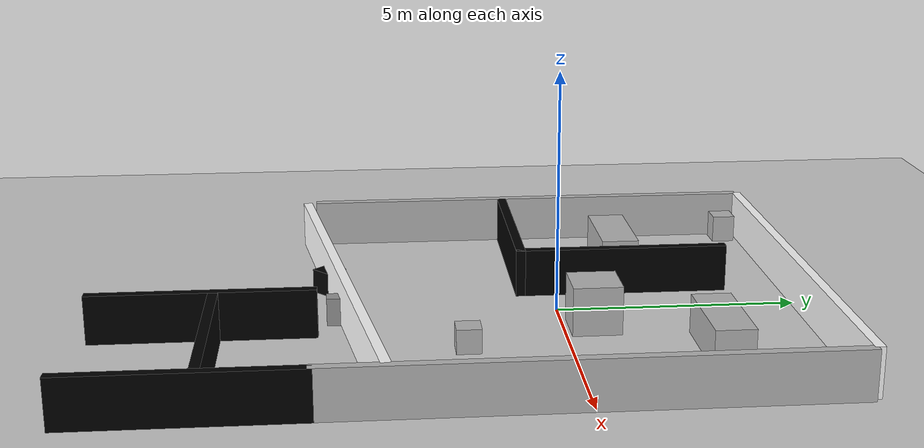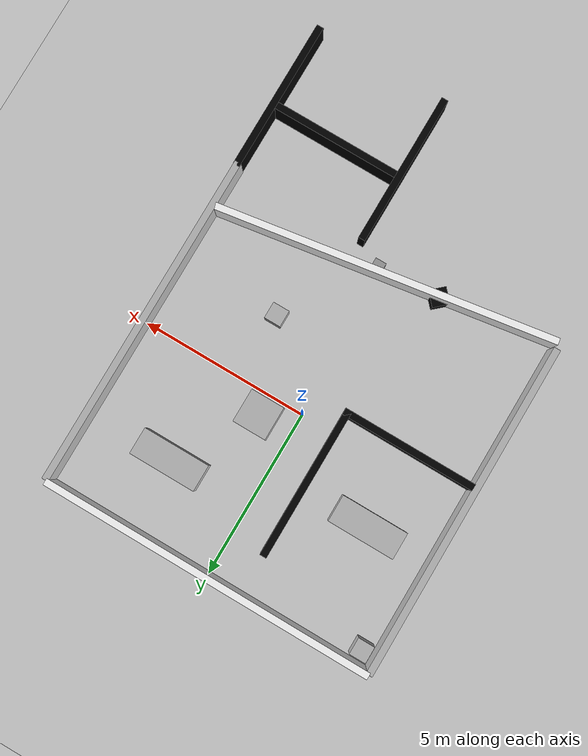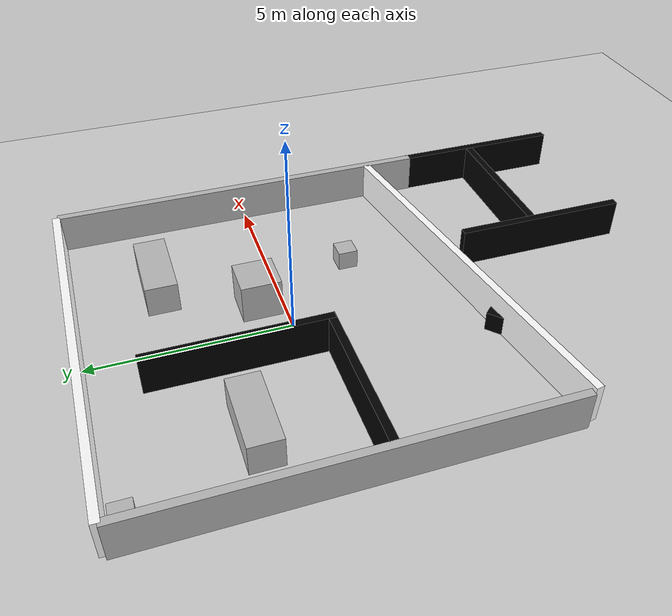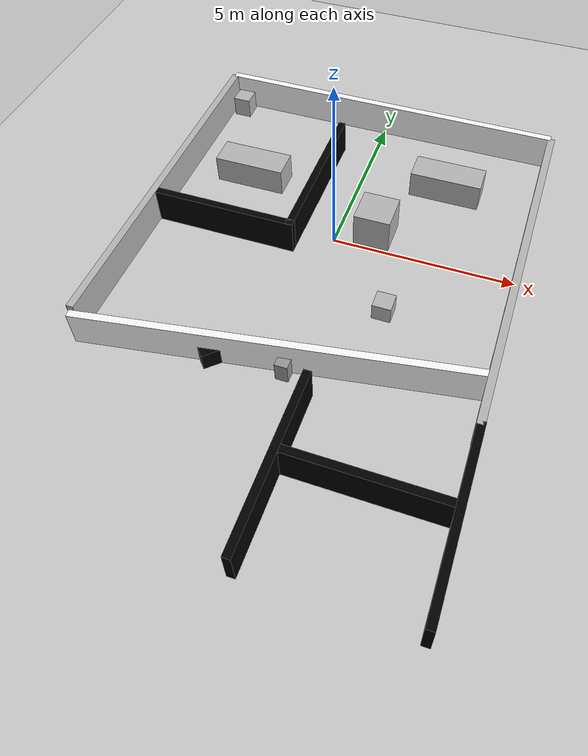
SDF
<sdf version="1.7">
 <world name="vacuum_room">
  <light name="sun" type="directional">
   <pose>0 0 10 0 -0 0</pose>
   <diffuse>0.8 0.8 0.8 1</diffuse>
   <specular>0.2 0.2 0.2 1</specular>
   <attenuation>
    <range>1000</range>
    <constant>0.9</constant>
    <linear>0.01</linear>
    <quadratic>0.001</quadratic>
   </attenuation>
   <direction>-0.5 0.1 -0.9</direction>
   <spot><inner_angle>0</inner_angle><outer_angle>0</outer_angle><falloff>0</falloff></spot>
  </light>
  <model name="ground_plane">
   <static>1</static>
   <link name="link">
    <collision name="collision">
     <geometry><plane><normal>0 0 1</normal><size>100 100</size></plane></geometry>
     <surface>
      <contact><collide_bitmask>65535</collide_bitmask></contact>
      <friction><ode><mu>100</mu><mu2>50</mu2></ode></friction>
     </surface>
    </collision>
    <visual name="visual">
     <cast_shadows>0</cast_shadows>
     <geometry><plane><normal>0 0 1</normal><size>100 100</size></plane></geometry>
     <material>
      <script><uri>file://media/materials/scripts/gazebo.material</uri><name>Gazebo/Grey</name></script>
     </material>
    </visual>
   </link>
  </model>
  <model name="wall_3">
   <static>1</static>
   <pose>5 0 0.5 0 -0 1.57</pose>
   <link name="link">
    <collision name="collision"><geometry><box><size>10 0.2 1</size></box></geometry></collision>
    <visual name="visual"><geometry><box><size>10 0.2 1</size></box></geometry></visual>
   </link>
  </model>
  <model name="wall_4">
   <static>1</static>
   <pose>-5 0 0.5 0 -0 1.57</pose>
   <link name="link">
    <collision name="collision"><geometry><box><size>10 0.2 1</size></box></geometry></collision>
    <visual name="visual"><geometry><box><size>10 0.2 1</size></box></geometry></visual>
   </link>
  </model>
  <model name="table">
   <static>1</static>
   <pose>1.00913 0.605175 0.5 0 -0 0</pose>
   <link name="link">
    <collision name="collision"><geometry><box><size>1 1 1</size></box></geometry></collision>
    <visual name="visual"><geometry><box><size>1 1 1</size></box></geometry></visual>
   </link>
  </model>
  <model name="chair">
   <static>1</static>
   <pose>-4.56337 4.58946 0.3 0 -0 0</pose>
   <link name="link">
    <collision name="collision"><geometry><box><size>0.5 0.5 0.6</size></box></geometry></collision>
    <visual name="visual"><geometry><box><size>0.5 0.5 0.6</size></box></geometry></visual>
   </link>
  </model>
  <model name="sofa">
   <static>1</static>
   <pose>2.46093 2.85938 0.4 0 -0 0</pose>
   <link name="link">
    <collision name="collision"><geometry><box><size>2 0.8 0.8</size></box></geometry></collision>
    <visual name="visual"><geometry><box><size>2 0.8 0.8</size></box></geometry></visual>
   </link>
  </model>
  <model name="box1">
   <static>1</static>
   <pose>2 -2 0.25 0 -0 0</pose>
   <link name="link">
    <collision name="collision"><geometry><box><size>0.5 0.5 0.5</size></box></geometry></collision>
    <visual name="visual"><geometry><box><size>0.5 0.5 0.5</size></box></geometry></visual>
   </link>
  </model>
  <gravity>0 0 -9.8</gravity>
  <magnetic_field>6e-06 2.3e-05 -4.2e-05</magnetic_field>
  <atmosphere type="adiabatic"/>
  <physics type="ode">
   <max_step_size>0.001</max_step_size>
   <real_time_factor>1</real_time_factor>
   <real_time_update_rate>1000</real_time_update_rate>
  </physics>
  <scene><ambient>0.4 0.4 0.4 1</ambient><background>0.7 0.7 0.7 1</background><shadows>1</shadows></scene>
  <audio><device>default</device></audio>
  <spherical_coordinates>
   <surface_model>EARTH_WGS84</surface_model>
   <latitude_deg>0</latitude_deg>
   <longitude_deg>0</longitude_deg>
   <elevation>0</elevation>
   <heading_deg>0</heading_deg>
  </spherical_coordinates>
  <model name="wall_1_clone">
   <link name="link">
    <pose>3.05223 1.17846 0 0 -0 0</pose>
    <inertial>
     <mass>1</mass>
     <inertia><ixx>1</ixx><ixy>0</ixy><ixz>0</ixz><iyy>1</iyy><iyz>0</iyz><izz>1</izz></inertia>
    </inertial>
    <visual name="visual">
     <geometry><box><size>4 0.2 1</size></box></geometry>
     <material>
      <shader type="pixel"><normal_map>__default__</normal_map></shader>
      <script><name>ModelPreview_6::link::visual_MATERIAL_</name><uri>__default__</uri></script>
      <ambient>0 0 0 1</ambient>
      <diffuse>0 0 0 1</diffuse>
      <specular>0 0 0 1</specular>
      <emissive>0 0 0 1</emissive>
     </material>
    </visual>
    <collision name="collision">
     <geometry><box><size>4 0.2 1</size></box></geometry>
     <surface>
      <friction>
       <ode><mu>1</mu><mu2>1</mu2><fdir1>0 0 0</fdir1><slip1>0</slip1><slip2>0</slip2></ode>
       <torsional>
        <coefficient>1</coefficient>
        <patch_radius>0</patch_radius>
        <surface_radius>0</surface_radius>
        <use_patch_radius>1</use_patch_radius>
        <ode><slip>0</slip></ode>
       </torsional>
      </friction>
      <bounce><restitution_coefficient>0</restitution_coefficient><threshold>1e+06</threshold></bounce>
      <contact>
       <collide_without_contact>0</collide_without_contact>
       <collide_without_contact_bitmask>1</collide_without_contact_bitmask>
       <collide_bitmask>1</collide_bitmask>
       <ode>
        <soft_cfm>0</soft_cfm>
        <soft_erp>0.2</soft_erp>
        <kp>1e+13</kp>
        <kd>1</kd>
        <max_vel>0.01</max_vel>
        <min_depth>0</min_depth>
       </ode>
       <bullet>
        <split_impulse>1</split_impulse>
        <split_impulse_penetration_threshold>-0.01</split_impulse_penetration_threshold>
        <soft_cfm>0</soft_cfm>
        <soft_erp>0.2</soft_erp>
        <kp>1e+13</kp>
        <kd>1</kd>
       </bullet>
      </contact>
     </surface>
    </collision>
   </link>
   <static>1</static>
   <pose>-5.97211 -1.82063 0.5 0 -0 0</pose>
  </model>
  <model name="wall_4_clone_clone">
   <link name="link">
    <pose>1.52859 -0.039232 0 0 -0 0</pose>
    <inertial>
     <mass>1</mass>
     <inertia><ixx>1</ixx><ixy>0</ixy><ixz>0</ixz><iyy>1</iyy><iyz>0</iyz><izz>1</izz></inertia>
    </inertial>
    <visual name="visual">
     <geometry><box><size>4.5 0.2 1</size></box></geometry>
     <material>
      <shader type="pixel"><normal_map>__default__</normal_map></shader>
      <script><name>ModelPreview_24::link::visual_MATERIAL_</name><uri>__default__</uri></script>
      <ambient>0 0 0 1</ambient>
      <diffuse>0 0 0 1</diffuse>
      <specular>0 0 0 1</specular>
      <emissive>0 0 0 1</emissive>
     </material>
    </visual>
    <collision name="collision">
     <geometry><box><size>4.5 0.2 1</size></box></geometry>
     <surface>
      <friction>
       <ode><mu>1</mu><mu2>1</mu2><fdir1>0 0 0</fdir1><slip1>0</slip1><slip2>0</slip2></ode>
       <torsional>
        <coefficient>1</coefficient>
        <patch_radius>0</patch_radius>
        <surface_radius>0</surface_radius>
        <use_patch_radius>1</use_patch_radius>
        <ode><slip>0</slip></ode>
       </torsional>
      </friction>
      <bounce><restitution_coefficient>0</restitution_coefficient><threshold>1e+06</threshold></bounce>
      <contact>
       <collide_without_contact>0</collide_without_contact>
       <collide_without_contact_bitmask>1</collide_without_contact_bitmask>
       <collide_bitmask>1</collide_bitmask>
       <ode>
        <soft_cfm>0</soft_cfm>
        <soft_erp>0.2</soft_erp>
        <kp>1e+13</kp>
        <kd>1</kd>
        <max_vel>0.01</max_vel>
        <min_depth>0</min_depth>
       </ode>
       <bullet>
        <split_impulse>1</split_impulse>
        <split_impulse_penetration_threshold>-0.01</split_impulse_penetration_threshold>
        <soft_cfm>0</soft_cfm>
        <soft_erp>0.2</soft_erp>
        <kp>1e+13</kp>
        <kd>1</kd>
       </bullet>
      </contact>
     </surface>
    </collision>
   </link>
   <static>1</static>
   <pose>-1.0604 -0.010818 0.5 0 -0 1.57</pose>
  </model>
  <model name="sofa_clone">
   <static>1</static>
   <pose>-3.03811 1.69482 0.4 0 -0 0</pose>
   <link name="link">
    <collision name="collision"><geometry><box><size>2 0.8 0.8</size></box></geometry></collision>
    <visual name="visual"><geometry><box><size>2 0.8 0.8</size></box></geometry></visual>
   </link>
  </model>
  <model name="wall_1_clone_0_clone">
   <link name="link">
    <pose>-2.9324 1.18491 -0.003739 0 -0 0</pose>
    <inertial>
     <mass>1</mass>
     <inertia><ixx>1</ixx><ixy>0</ixy><ixz>0</ixz><iyy>1</iyy><iyz>0</iyz><izz>1</izz></inertia>
    </inertial>
    <visual name="visual">
     <geometry><box><size>4 0.2 1</size></box></geometry>
     <material>
      <shader type="pixel"><normal_map>__default__</normal_map></shader>
      <script><name>ModelPreview_3::link::visual_MATERIAL_</name><uri>__default__</uri></script>
      <ambient>0 0 0 1</ambient>
      <diffuse>0 0 0 1</diffuse>
      <specular>0 0 0 1</specular>
      <emissive>0 0 0 1</emissive>
     </material>
    </visual>
    <collision name="collision">
     <geometry><box><size>4 0.2 1</size></box></geometry>
     <surface>
      <friction>
       <ode><mu>1</mu><mu2>1</mu2><fdir1>0 0 0</fdir1><slip1>0</slip1><slip2>0</slip2></ode>
       <torsional>
        <coefficient>1</coefficient>
        <patch_radius>0</patch_radius>
        <surface_radius>0</surface_radius>
        <use_patch_radius>1</use_patch_radius>
        <ode><slip>0</slip></ode>
       </torsional>
      </friction>
      <bounce><restitution_coefficient>0</restitution_coefficient><threshold>1e+06</threshold></bounce>
      <contact>
       <collide_without_contact>0</collide_without_contact>
       <collide_without_contact_bitmask>1</collide_without_contact_bitmask>
       <collide_bitmask>1</collide_bitmask>
       <ode>
        <soft_cfm>0</soft_cfm>
        <soft_erp>0.2</soft_erp>
        <kp>1e+13</kp>
        <kd>1</kd>
        <max_vel>0.01</max_vel>
        <min_depth>0</min_depth>
       </ode>
       <bullet>
        <split_impulse>1</split_impulse>
        <split_impulse_penetration_threshold>-0.01</split_impulse_penetration_threshold>
        <soft_cfm>0</soft_cfm>
        <soft_erp>0.2</soft_erp>
        <kp>1e+13</kp>
        <kd>1</kd>
       </bullet>
      </contact>
     </surface>
    </collision>
   </link>
   <static>1</static>
   <pose>5.90729 -8.0836 0.5 0 -0 0</pose>
  </model>
  <model name="wall_4_clone_clone_clone_clone">
   <link name="link">
    <pose>1.52859 -0.039232 0 0 -0 0</pose>
    <inertial>
     <mass>1</mass>
     <inertia><ixx>1</ixx><ixy>0</ixy><ixz>0</ixz><iyy>1</iyy><iyz>0</iyz><izz>1</izz></inertia>
    </inertial>
    <visual name="visual">
     <geometry><box><size>4.5 0.2 1</size></box></geometry>
     <material>
      <shader type="pixel"><normal_map>__default__</normal_map></shader>
      <script><name>ModelPreview_24::link::visual_MATERIAL_</name><uri>__default__</uri></script>
      <ambient>0 0 0 1</ambient>
      <diffuse>0 0 0 1</diffuse>
      <specular>0 0 0 1</specular>
      <emissive>0 0 0 1</emissive>
     </material>
    </visual>
    <collision name="collision">
     <geometry><box><size>4.5 0.2 1</size></box></geometry>
     <surface>
      <friction>
       <ode><mu>1</mu><mu2>1</mu2><fdir1>0 0 0</fdir1><slip1>0</slip1><slip2>0</slip2></ode>
       <torsional>
        <coefficient>1</coefficient>
        <patch_radius>0</patch_radius>
        <surface_radius>0</surface_radius>
        <use_patch_radius>1</use_patch_radius>
        <ode><slip>0</slip></ode>
       </torsional>
      </friction>
      <bounce><restitution_coefficient>0</restitution_coefficient><threshold>1e+06</threshold></bounce>
      <contact>
       <collide_without_contact>0</collide_without_contact>
       <collide_without_contact_bitmask>1</collide_without_contact_bitmask>
       <collide_bitmask>1</collide_bitmask>
       <ode>
        <soft_cfm>0</soft_cfm>
        <soft_erp>0.2</soft_erp>
        <kp>1e+13</kp>
        <kd>1</kd>
        <max_vel>0.01</max_vel>
        <min_depth>0</min_depth>
       </ode>
       <bullet>
        <split_impulse>1</split_impulse>
        <split_impulse_penetration_threshold>-0.01</split_impulse_penetration_threshold>
        <soft_cfm>0</soft_cfm>
        <soft_erp>0.2</soft_erp>
        <kp>1e+13</kp>
        <kd>1</kd>
       </bullet>
      </contact>
     </surface>
    </collision>
   </link>
   <static>1</static>
   <pose>0.990371 -8.66835 0.5 0 -0 1.57</pose>
  </model>
  <model name="wall_4_clone_clone_clone_clone_0">
   <link name="link">
    <pose>1.52859 -0.039232 0 0 -0 0</pose>
    <inertial>
     <mass>1</mass>
     <inertia><ixx>1</ixx><ixy>0</ixy><ixz>0</ixz><iyy>1</iyy><iyz>0</iyz><izz>1</izz></inertia>
    </inertial>
    <visual name="visual">
     <geometry><box><size>4.5 0.2 1</size></box></geometry>
     <material>
      <shader type="pixel"><normal_map>__default__</normal_map></shader>
      <script><name>ModelPreview_24::link::visual_MATERIAL_</name><uri>__default__</uri></script>
      <ambient>0 0 0 1</ambient>
      <diffuse>0 0 0 1</diffuse>
      <specular>0 0 0 1</specular>
      <emissive>0 0 0 1</emissive>
     </material>
    </visual>
    <collision name="collision">
     <geometry><box><size>4.5 0.2 1</size></box></geometry>
     <surface>
      <friction>
       <ode><mu>1</mu><mu2>1</mu2><fdir1>0 0 0</fdir1><slip1>0</slip1><slip2>0</slip2></ode>
       <torsional>
        <coefficient>1</coefficient>
        <patch_radius>0</patch_radius>
        <surface_radius>0</surface_radius>
        <use_patch_radius>1</use_patch_radius>
        <ode><slip>0</slip></ode>
       </torsional>
      </friction>
      <bounce><restitution_coefficient>0</restitution_coefficient><threshold>1e+06</threshold></bounce>
      <contact>
       <collide_without_contact>0</collide_without_contact>
       <collide_without_contact_bitmask>1</collide_without_contact_bitmask>
       <collide_bitmask>1</collide_bitmask>
       <ode>
        <soft_cfm>0</soft_cfm>
        <soft_erp>0.2</soft_erp>
        <kp>1e+13</kp>
        <kd>1</kd>
        <max_vel>0.01</max_vel>
        <min_depth>0</min_depth>
       </ode>
       <bullet>
        <split_impulse>1</split_impulse>
        <split_impulse_penetration_threshold>-0.01</split_impulse_penetration_threshold>
        <soft_cfm>0</soft_cfm>
        <soft_erp>0.2</soft_erp>
        <kp>1e+13</kp>
        <kd>1</kd>
       </bullet>
      </contact>
     </surface>
    </collision>
   </link>
   <static>1</static>
   <pose>4.96463 -8.68696 0.5 0 -0 1.57</pose>
  </model>
  <model name="wall_2_clone">
   <link name="link">
    <pose>0.474548 0 0 0 -0 0</pose>
    <inertial>
     <mass>1</mass>
     <inertia><ixx>1</ixx><ixy>0</ixy><ixz>0</ixz><iyy>1</iyy><iyz>0</iyz><izz>1</izz></inertia>
    </inertial>
    <visual name="visual">
     <geometry><box><size>9.99 0.2 1</size></box></geometry>
     <material>
      <shader type="pixel"><normal_map>__default__</normal_map></shader>
      <script><name>ModelPreview_44::link::visual_MATERIAL_</name><uri>__default__</uri></script>
      <ambient>1 1 1 1</ambient>
      <diffuse>1 1 1 1</diffuse>
      <specular>0 0 0 1</specular>
      <emissive>0 0 0 1</emissive>
     </material>
     <pose>-0.5 0 0 0 -0 0</pose>
    </visual>
    <collision name="collision">
     <pose>-0.5 0 0 0 -0 0</pose>
     <geometry><box><size>10 0.2 1</size></box></geometry>
     <surface>
      <friction>
       <ode><mu>1</mu><mu2>1</mu2><fdir1>0 0 0</fdir1><slip1>0</slip1><slip2>0</slip2></ode>
       <torsional>
        <coefficient>1</coefficient>
        <patch_radius>0</patch_radius>
        <surface_radius>0</surface_radius>
        <use_patch_radius>1</use_patch_radius>
        <ode><slip>0</slip></ode>
       </torsional>
      </friction>
      <bounce><restitution_coefficient>0</restitution_coefficient><threshold>1e+06</threshold></bounce>
      <contact>
       <collide_without_contact>0</collide_without_contact>
       <collide_without_contact_bitmask>1</collide_without_contact_bitmask>
       <collide_bitmask>1</collide_bitmask>
       <ode>
        <soft_cfm>0</soft_cfm>
        <soft_erp>0.2</soft_erp>
        <kp>1e+13</kp>
        <kd>1</kd>
        <max_vel>0.01</max_vel>
        <min_depth>0</min_depth>
       </ode>
       <bullet>
        <split_impulse>1</split_impulse>
        <split_impulse_penetration_threshold>-0.01</split_impulse_penetration_threshold>
        <soft_cfm>0</soft_cfm>
        <soft_erp>0.2</soft_erp>
        <kp>1e+13</kp>
        <kd>1</kd>
       </bullet>
      </contact>
     </surface>
    </collision>
   </link>
   <static>1</static>
   <pose>0.01453 5.03175 0.5 0 -0 0</pose>
  </model>
  <model name="box1_clone">
   <link name="link">
    <pose>0 0 0 0 -0 0.741284</pose>
    <inertial>
     <mass>1</mass>
     <inertia><ixx>1</ixx><ixy>0</ixy><ixz>0</ixz><iyy>1</iyy><iyz>0</iyz><izz>1</izz></inertia>
    </inertial>
    <visual name="visual">
     <geometry><box><size>0.5 0.5 0.5</size></box></geometry>
     <material>
      <shader type="pixel"><normal_map>__default__</normal_map></shader>
      <script><name>ModelPreview_1::link::visual_MATERIAL_</name><uri>__default__</uri></script>
      <ambient>0 0 0 1</ambient>
      <diffuse>0 0 0 1</diffuse>
      <specular>0 0 0 1</specular>
      <emissive>0 0 0 1</emissive>
     </material>
    </visual>
    <collision name="collision">
     <geometry><box><size>0.5 0.5 0.5</size></box></geometry>
     <surface>
      <friction>
       <ode><mu>1</mu><mu2>1</mu2><fdir1>0 0 0</fdir1><slip1>0</slip1><slip2>0</slip2></ode>
       <torsional>
        <coefficient>1</coefficient>
        <patch_radius>0</patch_radius>
        <surface_radius>0</surface_radius>
        <use_patch_radius>1</use_patch_radius>
        <ode><slip>0</slip></ode>
       </torsional>
      </friction>
      <bounce><restitution_coefficient>0</restitution_coefficient><threshold>1e+06</threshold></bounce>
      <contact>
       <collide_without_contact>0</collide_without_contact>
       <collide_without_contact_bitmask>1</collide_without_contact_bitmask>
       <collide_bitmask>1</collide_bitmask>
       <ode>
        <soft_cfm>0</soft_cfm>
        <soft_erp>0.2</soft_erp>
        <kp>1e+13</kp>
        <kd>1</kd>
        <max_vel>0.01</max_vel>
        <min_depth>0</min_depth>
       </ode>
       <bullet>
        <split_impulse>1</split_impulse>
        <split_impulse_penetration_threshold>-0.01</split_impulse_penetration_threshold>
        <soft_cfm>0</soft_cfm>
        <soft_erp>0.2</soft_erp>
        <kp>1e+13</kp>
        <kd>1</kd>
       </bullet>
      </contact>
     </surface>
    </collision>
   </link>
   <link name="link_2">
    <inertial>
     <mass>0.0788247</mass>
     <inertia>
      <ixx>0.00337683</ixx>
      <ixy>0</ixy>
      <ixz>0</ixz>
      <iyy>0.0030667</iyy>
      <iyz>0</iyz>
      <izz>0.00176251</izz>
     </inertia>
    </inertial>
    <pose>1.87031 0.150174 0.009413 0 -0 0</pose>
    <visual name="visual">
     <geometry><box><size>0.332495 0.397198 0.596918</size></box></geometry>
     <material>
      <lighting>1</lighting>
      <script><uri>file://media/materials/scripts/gazebo.material</uri><name>Gazebo/Grey</name></script>
      <shader type="pixel"/>
     </material>
    </visual>
    <collision name="collision">
     <geometry><box><size>0.332495 0.397198 0.596918</size></box></geometry>
     <surface>
      <friction>
       <ode><mu>1</mu><mu2>1</mu2><fdir1>0 0 0</fdir1><slip1>0</slip1><slip2>0</slip2></ode>
       <torsional>
        <coefficient>1</coefficient>
        <patch_radius>0</patch_radius>
        <surface_radius>0</surface_radius>
        <use_patch_radius>1</use_patch_radius>
        <ode><slip>0</slip></ode>
       </torsional>
      </friction>
      <bounce><restitution_coefficient>0</restitution_coefficient><threshold>1e+06</threshold></bounce>
      <contact>
       <collide_without_contact>0</collide_without_contact>
       <collide_without_contact_bitmask>1</collide_without_contact_bitmask>
       <collide_bitmask>1</collide_bitmask>
       <ode>
        <soft_cfm>0</soft_cfm>
        <soft_erp>0.2</soft_erp>
        <kp>1e+13</kp>
        <kd>1</kd>
        <max_vel>0.01</max_vel>
        <min_depth>0</min_depth>
       </ode>
       <bullet>
        <split_impulse>1</split_impulse>
        <split_impulse_penetration_threshold>-0.01</split_impulse_penetration_threshold>
        <soft_cfm>0</soft_cfm>
        <soft_erp>0.2</soft_erp>
        <kp>1e+13</kp>
        <kd>1</kd>
       </bullet>
      </contact>
     </surface>
    </collision>
   </link>
   <static>1</static>
   <pose>-1.57966 -4.67627 0.25 0 -0 0</pose>
  </model>
  <model name="wall_2_clone_clone">
   <link name="link">
    <pose>1.07401 0.243168 0 0 -0 0.076613</pose>
    <inertial>
     <mass>1</mass>
     <inertia><ixx>1</ixx><ixy>0</ixy><ixz>0</ixz><iyy>1</iyy><iyz>0</iyz><izz>1</izz></inertia>
    </inertial>
    <visual name="visual">
     <geometry><box><size>10 0.2 1</size></box></geometry>
     <material>
      <shader type="pixel"><normal_map>__default__</normal_map></shader>
      <script><name>ModelPreview_44::link::visual_MATERIAL_</name><uri>__default__</uri></script>
      <ambient>1 1 1 1</ambient>
      <diffuse>1 1 1 1</diffuse>
      <specular>0 0 0 1</specular>
      <emissive>0 0 0 1</emissive>
     </material>
    </visual>
    <collision name="collision">
     <geometry><box><size>10 0.2 1</size></box></geometry>
     <surface>
      <friction>
       <ode><mu>1</mu><mu2>1</mu2><fdir1>0 0 0</fdir1><slip1>0</slip1><slip2>0</slip2></ode>
       <torsional>
        <coefficient>1</coefficient>
        <patch_radius>0</patch_radius>
        <surface_radius>0</surface_radius>
        <use_patch_radius>1</use_patch_radius>
        <ode><slip>0</slip></ode>
       </torsional>
      </friction>
      <bounce><restitution_coefficient>0</restitution_coefficient><threshold>1e+06</threshold></bounce>
      <contact>
       <collide_without_contact>0</collide_without_contact>
       <collide_without_contact_bitmask>1</collide_without_contact_bitmask>
       <collide_bitmask>1</collide_bitmask>
       <ode>
        <soft_cfm>0</soft_cfm>
        <soft_erp>0.2</soft_erp>
        <kp>1e+13</kp>
        <kd>1</kd>
        <max_vel>0.01</max_vel>
        <min_depth>0</min_depth>
       </ode>
       <bullet>
        <split_impulse>1</split_impulse>
        <split_impulse_penetration_threshold>-0.01</split_impulse_penetration_threshold>
        <soft_cfm>0</soft_cfm>
        <soft_erp>0.2</soft_erp>
        <kp>1e+13</kp>
        <kd>1</kd>
       </bullet>
      </contact>
     </surface>
    </collision>
   </link>
   <static>1</static>
   <pose>-1.05763 -4.74761 0.5 0 -0 0.077954</pose>
  </model>
 </world>
</sdf>
